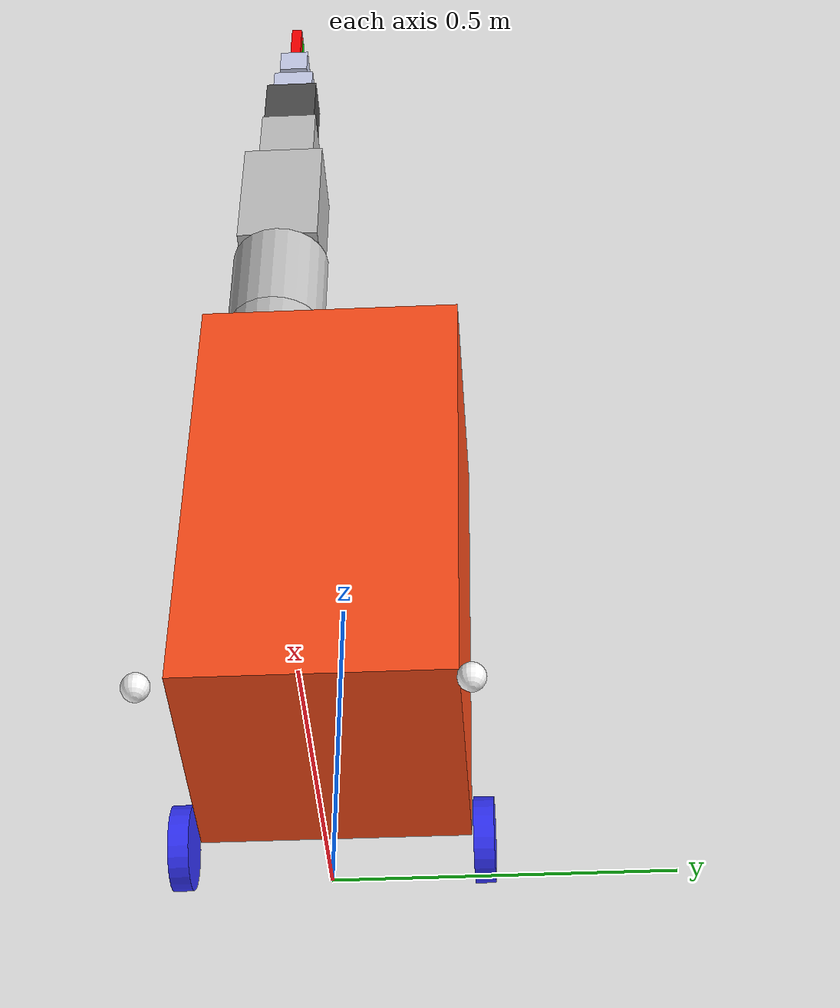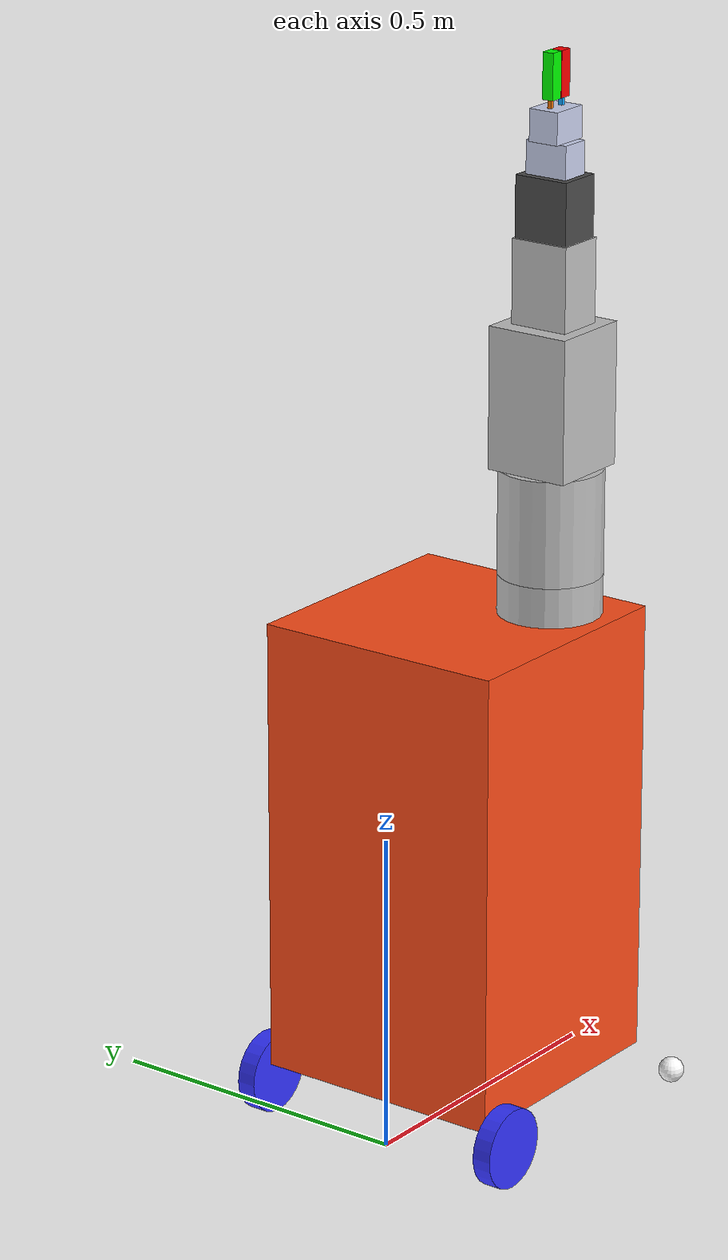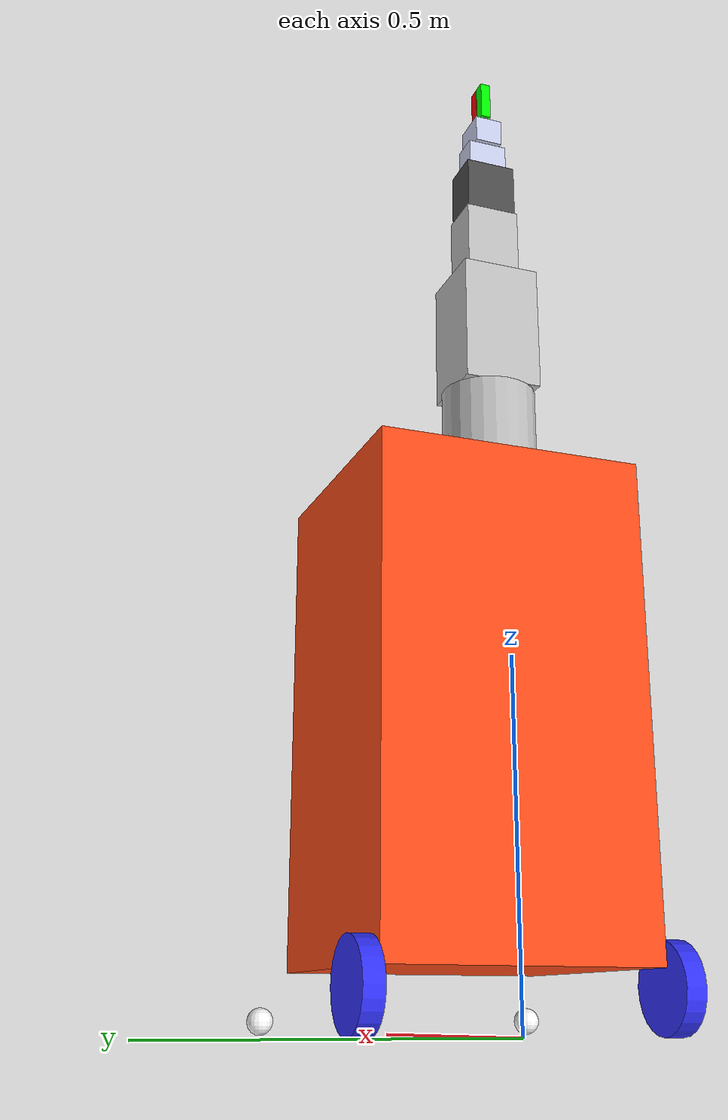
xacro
<?xml version="1.0"?>
<robot xmlns:xacro="http://www.ros.org/wiki/xacro" name="robot">
    <xacro:arg name="initial_positions_file" default="initial_positions.yaml" />

    <!-- Import robot urdf file -->
    <xacro:include filename="$(find robot_description)/urdf/robot_description.xacro" />

    <!-- Import control_xacro -->

</robot>

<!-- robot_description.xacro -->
<robot xmlns:xacro="http://www.ros.org/wiki/xacro"  name="robot_description">

    <xacro:include filename="robot_core.xacro" />

</robot>

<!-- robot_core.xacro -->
<robot xmlns:xacro="http://www.ros.org/wiki/xacro" >

    <xacro:include filename="inertial_macros.xacro"/>

    <xacro:property name="chassis_length" value="0.405"/>
    <xacro:property name="chassis_width" value="0.405"/>
    <xacro:property name="chassis_height" value="0.720"/>
    <xacro:property name="chassis_mass" value="1.0"/>
    <xacro:property name="wheel_radius" value="0.0625"/>
    <xacro:property name="wheel_thickness" value="0.030"/>
    <xacro:property name="wheel_mass" value="0.05"/>
    <xacro:property name="wheel_offset_x" value="0.025"/>
    <xacro:property name="wheel_offset_y" value="0.2225"/>
    <xacro:property name="wheel_offset_z" value="-0.025"/>
    <xacro:property name="caster_wheel_radius" value="0.02"/>
    <xacro:property name="caster_wheel_mass" value="0.01"/>
    <xacro:property name="caster_wheel_offset_x" value="0.475"/>
    <xacro:property name="caster_wheel_offset_y" value="0.2225"/>
    <xacro:property name="caster_wheel_offset_z" value="${wheel_offset_z - wheel_radius + caster_wheel_radius}"/>

    <xacro:property name="link_0_radius" value="0.08"/>
    <xacro:property name="link_0_height" value="0.062"/>

    <xacro:property name="link_1_radius" value="0.08"/>
    <xacro:property name="link_1_height" value="0.1655"/>

    <xacro:property name="link_2_width" value="0.1346"/>
    <xacro:property name="link_2_length" value="0.1346"/>
    <xacro:property name="link_2_height" value="0.2202"/>

    <xacro:property name="link_3_width" value="0.0776"/>
    <xacro:property name="link_3_length" value="0.095"/>
    <xacro:property name="link_3_height" value="0.1299"/>

    <xacro:property name="link_4_width" value="0.0719"/>
    <xacro:property name="link_4_length" value="0.0891"/>
    <xacro:property name="link_4_height" value="0.0949"/>

    <xacro:property name="link_5_width" value="0.048"/>
    <xacro:property name="link_5_length" value="0.0700"/>
    <xacro:property name="link_5_height" value="0.0510"/>

    <xacro:property name="hand_width" value="0.049"/>
    <xacro:property name="hand_length" value="0.0632"/>
    <xacro:property name="hand_height" value="0.0490"/>

    <xacro:property name="gripper_servo_gear_width" value="0.006"/>
    <xacro:property name="gripper_servo_gear_length" value="0.006"/>
    <xacro:property name="gripper_servo_gear_height" value="0.0399"/>

    <xacro:property name="tip_gripper_servo_width" value="0.018"/>
    <xacro:property name="tip_gripper_servo_length" value="0.021"/>
    <xacro:property name="tip_gripper_servo_height" value="0.07"/>

    <xacro:property name="pivot_arm_gripper_servo_width" value="0.006"/>
    <xacro:property name="pivot_arm_gripper_servo_length" value="0.006"/>
    <xacro:property name="pivot_arm_gripper_servo_height" value="0.0399"/>

    <xacro:property name="gripper_idol_gear_width" value="0.006"/>
    <xacro:property name="gripper_idol_gear_length" value="0.006"/>
    <xacro:property name="gripper_idol_gear_height" value="0.0399"/>

    <xacro:property name="tip_gripper_idol_width" value="0.018"/>
    <xacro:property name="tip_gripper_idol_length" value="0.021"/>
    <xacro:property name="tip_gripper_idol_height" value="0.07"/>

    <xacro:property name="pivot_arm_gripper_idol_width" value="0.006"/>
    <xacro:property name="pivot_arm_gripper_idol_length" value="0.006"/>
    <xacro:property name="pivot_arm_gripper_idol_height" value="0.0399"/>

    <xacro:property name="joint_damping" value="21.75"/>
    <xacro:property name="joint_friction" value="10.48"/>
    <xacro:property name="joint_spring_stiffness" value="0"/>
    <xacro:property name="joint_spring_reference" value="0"/>
  <xacro:property name="gripper_joint_damping" value="0.01"/>
  <xacro:property name="gripper_joint_friction" value="0.01"/>
    <xacro:property name="gripper_joint_spring_stiffness" value="0"/>
    <xacro:property name="gripper_joint_spring_reference" value="0"/>

    <xacro:property name="scale_finger_length" value="0.9" />

    <material name="white">
        <color rgba="1 1 1 1" />
    </material>

    <material name="orange">
        <color rgba="1 0.3 0.1 1"/>
    </material>

    <material name="blue">
        <color rgba="0.2 0.2 1 1"/>
    </material>

    <material name="black">
        <color rgba="0 0 0 1"/>
    </material>

    <material name="red">
        <color rgba="1 0 0 1"/>
    </material>

    <!-- BASE LINK -->

    <link name="base_link"></link>
    <!-- BASE_FOOTPRINT LINK -->

    <joint name="base_footprint_joint" type="fixed">
        <parent link="base_link"/>
        <child link="base_footprint"/>
        <origin xyz="0 0 0" rpy="0 0 0"/>
    </joint>

    <link name="base_footprint">
    </link>

    <!-- BASE LINK -->

    <joint name="floor_joint" type="fixed">
        <parent link="base_link"/>
        <child link="floor"/>
        <origin xyz="0 0 ${wheel_radius}"/>
    </joint>

    <link name="floor"></link>
    <!-- BASE_FOOTPRINT LINK -->

    <!-- CHASSIS LINK -->

    <joint name="chassis_joint" type="fixed">
        <parent link="floor"/>
        <child link="chassis"/>
        <origin xyz="${-wheel_offset_x} 0 ${-wheel_offset_z}"/>
    </joint>

    <link name="chassis">
        <visual>
            <origin xyz="${chassis_length/2} 0 ${chassis_height/2}"/>
            <geometry>
                <box size="${chassis_length} ${chassis_width} ${chassis_height}"/>
            </geometry>
            <material name="orange"/>
        </visual>
        <collision>
            <origin xyz="${chassis_length/2} 0 ${chassis_height/2}"/>
            <geometry>
                <box size="${chassis_length} ${chassis_width} ${chassis_height}"/>
            </geometry>
        </collision>
        <xacro:inertial_box mass="10.0" x="${chassis_length}" y="${chassis_width}" z="${chassis_height}">
            <origin xyz="${chassis_length/2} 0 ${chassis_height/2}" rpy="0 0 0"/>
        </xacro:inertial_box>
    </link>

    <!-- LEFT WHEEL LINK -->

    <joint name="left_wheel_joint" type="continuous">
        <parent link="floor"/>
        <child link="left_wheel"/>
        <origin xyz="0 ${wheel_offset_y} 0" rpy="-${pi/2} 0 0" />
        <axis xyz="0 0 1"/>
        <dynamics damping="21.75" friction="10.48" spring_reference="${joint_spring_reference}" spring_stiffness="{joint_spring_stiffness}"/>
    </joint>

    <link name="left_wheel">
        <visual>
            <geometry>
                <cylinder radius="${wheel_radius}" length="${wheel_thickness}"/>
            </geometry>
            <material name="blue"/>
        </visual>
        <collision>
            <geometry>
                <sphere radius="${wheel_radius}"/>
            </geometry>
        </collision>
        <xacro:inertial_cylinder mass="${wheel_mass}" length="${wheel_thickness}" radius="${wheel_radius}">
            <origin xyz="0 0 0" rpy="0 0 0"/>
        </xacro:inertial_cylinder>
    </link>

    <!-- RIGHT WHEEL LINK -->

    <joint name="right_wheel_joint" type="continuous">
        <parent link="floor"/>
        <child link="right_wheel"/>
        <origin xyz="0 ${-wheel_offset_y} 0" rpy="${pi/2} 0 0" />
        <axis xyz="0 0 -1"/>
        <dynamics damping="21.75" friction="10.48" spring_reference="${joint_spring_reference}" spring_stiffness="{joint_spring_stiffness}"/>
    </joint>

    <link name="right_wheel">
        <visual>
            <geometry>
                <cylinder radius="${wheel_radius}" length="${wheel_thickness}"/>
            </geometry>
            <material name="blue"/>
        </visual>
        <collision>
            <geometry>
                <sphere radius="${wheel_radius}"/>
            </geometry>
        </collision>
        <xacro:inertial_cylinder mass="${wheel_mass}" length="${wheel_thickness}" radius="${wheel_radius}">
            <origin xyz="0 0 0" rpy="0 0 0"/>
        </xacro:inertial_cylinder>
    </link>

    <!-- CASTER WHEEL LINK -->

    <joint name="caster_wheel_joint" type="fixed">
        <parent link="chassis"/>
        <child link="caster_wheel"/>
        <origin xyz="${caster_wheel_offset_x} ${caster_wheel_offset_y} ${caster_wheel_offset_z}"/>
    </joint>

    <link name="caster_wheel">
        <visual>
            <geometry>
                <sphere radius="${caster_wheel_radius}"/>
            </geometry>
            <material name="white"/>
        </visual>
        <collision>
            <geometry>
                <sphere radius="${caster_wheel_radius}"/>
            </geometry>
        </collision>
        <xacro:inertial_sphere mass="${caster_wheel_mass}" radius="${caster_wheel_radius}">
            <origin xyz="0 0 0" rpy="0 0 0"/>
        </xacro:inertial_sphere>
    </link>

    <joint name="caster_wheel_joint2" type="fixed">
        <parent link="chassis"/>
        <child link="caster_wheel2"/>
        <origin xyz="${caster_wheel_offset_x} ${-caster_wheel_offset_y} ${caster_wheel_offset_z}"/>
    </joint>

    <link name="caster_wheel2">
        <visual>
            <geometry>
                <sphere radius="${caster_wheel_radius}"/>
            </geometry>
            <material name="white"/>
        </visual>
        <collision>
            <geometry>
                <sphere radius="${caster_wheel_radius}"/>
            </geometry>
        </collision>
        <xacro:inertial_sphere mass="${caster_wheel_mass}" radius="${caster_wheel_radius}">
            <origin xyz="0 0 0" rpy="0 0 0"/>
        </xacro:inertial_sphere>
    </link>

  <joint name="robot_joint0" type="fixed">
    <origin rpy="0 0 0.0" xyz="0.3 -0.1 ${chassis_height}" />
    <parent link="chassis"/>
    <child link="robot_link0"/>
  </joint>

  <link
    name="robot_link0">
    <xacro:inertial_cylinder mass="0.001246584" length="${link_0_height}" radius="${link_0_radius}">
        <origin xyz="0 0 ${link_0_height/2.0}" rpy="0 0 0"/>
    </xacro:inertial_cylinder>
    <visual>
      <origin
        xyz="0 0 ${link_0_height/2.0}"
        rpy="0 0 0" />
      <geometry>
        <cylinder radius="${link_0_radius}" length="${link_0_height}"/>
      </geometry>
      <material
        name="">
        <color
          rgba="0.75294 0.75294 0.75294 1" />
      </material>
    </visual>
    <collision>
      <origin
        xyz="0 0 ${link_0_height/2.0}"
        rpy="0 0 0" />
      <geometry>
        <cylinder radius="${link_0_radius}" length="${link_0_height}"/>
      </geometry>
    </collision>
  </link>

  <joint name="robot_joint1" type="revolute">
      <origin xyz="0 0 ${link_0_height}" rpy="0 0 0"/>
      <parent link="robot_link0"/>
      <child link="robot_link1"/>
      <axis xyz="0 0 1"/>
      <limit lower="${-pi/2.0}" upper="${pi/2.0}" velocity="100" effort="100"/>
      <dynamics damping="0.01" friction="0.01" spring_reference="${joint_spring_reference}" spring_stiffness="{joint_spring_stiffness}"/>
  </joint>

  <link
    name="robot_link1">
    <xacro:inertial_cylinder mass="0.003327575" length="${link_1_height}" radius="${link_1_radius}">
        <origin xyz="0 0 ${link_1_height/2.0}" rpy="0 0 0"/>
    </xacro:inertial_cylinder>
    <visual>
      <origin
        xyz="0 0 ${link_1_height/2.0}"
        rpy="0 0 0" />
      <geometry>
        <cylinder radius="${link_1_radius}" length="${link_1_height}"/>
      </geometry>
      <material
        name="">
        <color
          rgba="0.75294 0.75294 0.75294 1" />
      </material>
    </visual>
    <collision>
      <origin
        xyz="0 0 ${link_1_height/2.0}"
        rpy="0 0 0" />
      <geometry>
        <cylinder radius="${link_1_radius}" length="${link_1_height}"/>
      </geometry>
    </collision>
  </link>

  <link
    name="robot_link2">
    <xacro:inertial_box mass="0.003989399" x="${link_2_width}" y="${link_2_length}" z="${link_2_height}">
        <origin xyz="0 0 ${link_2_height/2.0}" rpy="0 0 0"/>
    </xacro:inertial_box>
    <visual>
      <origin
        xyz="0 0 ${link_2_height/2.0}"
        rpy="0 0 0" />
      <geometry>
        <box size="${link_2_width} ${link_2_length} ${link_2_height}"/>
      </geometry>
      <material
        name="">
        <color
          rgba="0.75294 0.75294 0.75294 1" />
      </material>
    </visual>
    <collision>
      <origin
        xyz="0 0 ${link_2_height/2.0}"
        rpy="0 0 0" />
      <geometry>
        <box size="${link_2_width} ${link_2_length} ${link_2_height}"/>
      </geometry>
    </collision>
  </link>

  <joint
    name="robot_joint2"
    type="revolute">
    <origin
      xyz="0 0 ${link_1_height}"
      rpy="0 0 0" />
    <parent
      link="robot_link1" />
    <child
      link="robot_link2" />
    <axis
      xyz="1 0 0" />
    <limit
      lower="-1.570796327"
      upper="1.570796327"
      effort="5"
      velocity="1" />
    <dynamics damping="0.01" friction="0.01" spring_reference="${joint_spring_reference}" spring_stiffness="{joint_spring_stiffness}"/>
  </joint>

  <link
    name="robot_link3">
    <xacro:inertial_box mass="0.000957623" x="${link_3_width}" y="${link_3_length}" z="${link_3_height}">
        <origin xyz="0 0 ${link_3_height/2.0}" rpy="0 0 0"/>
    </xacro:inertial_box>
    <visual>
      <origin
        xyz="0 0 ${link_3_height/2.0}"
        rpy="0 0 0" />
      <geometry>
        <box size="${link_3_width} ${link_3_length} ${link_3_height}"/>
      </geometry>
      <material
        name="">
        <color
          rgba="0.75294 0.75294 0.75294 1" />
      </material>
    </visual>
    <collision>
      <origin
        xyz="0 0 ${link_3_height/2.0}"
        rpy="0 0 0" />
      <geometry>
        <box size="${link_3_width} ${link_3_length} ${link_3_height}"/>
      </geometry>
    </collision>
  </link>

  <joint
    name="robot_joint3"
    type="revolute">
    <origin
      xyz="0 0 ${link_2_height}"
      rpy="0 0 0" />
    <parent
      link="robot_link2" />
    <child
      link="robot_link3" />
    <axis
      xyz="1 0 0" />
    <limit
      lower="-1.65"
      upper="1.65"
      effort="5"
      velocity="1" />
    <dynamics damping="0.01" friction="0.01" spring_reference="${joint_spring_reference}" spring_stiffness="{joint_spring_stiffness}"/>
  </joint>

  <link
    name="robot_link4">
    <xacro:inertial_box mass="0.000607957" x="${link_4_width}" y="${link_4_length}" z="${link_4_height}">
        <origin xyz="0 0 ${link_4_height/2}" rpy="0 0 0"/>
    </xacro:inertial_box>
    <visual>
      <origin
        xyz="0 0 ${link_4_height/2.0}"
        rpy="0 0 0" />
      <geometry>
        <box size="${link_4_width} ${link_4_length} ${link_4_height}"/>
      </geometry>
      <material
        name="">
        <color
          rgba="0.29412 0.29412 0.29412 1" />
      </material>
    </visual>
    <collision>
      <origin
        xyz="0 0 ${link_4_height/2.0}"
        rpy="0 0 0" />
      <geometry>
        <box size="${link_4_width} ${link_4_length} ${link_4_height}"/>
      </geometry>
    </collision>
  </link>

  <joint
    name="robot_joint4"
    type="revolute">
    <origin
      xyz="0 0 ${link_3_height}"
      rpy="0 0 0" />
    <parent
      link="robot_link3" />
    <child
      link="robot_link4" />
    <axis
      xyz="0 0 1" />
    <limit
      lower="-3.14"
      upper="3.14"
      effort="5"
      velocity="1" />
    <dynamics damping="0.01" friction="0.01" spring_reference="${joint_spring_reference}" spring_stiffness="{joint_spring_stiffness}"/>
  </joint>

  <link
    name="robot_link5">
    <xacro:inertial_box mass="0.00017136" x="${link_5_width}" y="${link_5_length}" z="${link_5_height}">
        <origin xyz="0 0 ${link_5_height/2}" rpy="0 0 0"/>
    </xacro:inertial_box>
    <visual>
      <origin
        xyz="0 0 ${link_5_height/2.0}"
        rpy="0 0 0" />
      <geometry>
        <box size="${link_5_width} ${link_5_length} ${link_5_height}"/>
      </geometry>
      <material
        name="">
        <color
          rgba="0.79216 0.81961 0.93333 1" />
      </material>
    </visual>
    <collision>
      <origin
        xyz="0 0 ${link_5_height/2.0}"
        rpy="0 0 0" />
      <geometry>
        <box size="${link_5_width} ${link_5_length} ${link_5_height}"/>
      </geometry>
    </collision>
  </link>

  <joint
    name="robot_joint5"
    type="revolute">
    <origin
      xyz="0 0 ${link_4_height}"
      rpy="0 0 0" />
    <parent
      link="robot_link4" />
    <child
      link="robot_link5" />
    <axis
      xyz="1 0 0" />
    <limit
      lower="-1.570796327"
      upper="1.570796327"
      effort="5"
      velocity="1" />
    <dynamics damping="0.01" friction="0.01" spring_reference="${joint_spring_reference}" spring_stiffness="{joint_spring_stiffness}"/>
  </joint>

  <link name="robot_link6" />

  <joint
    name="robot_joint6"
    type="revolute">
    <origin
      xyz="0 0 ${link_5_height}"
      rpy="0 0 0" />
    <parent
      link="robot_link5" />
    <child
      link="robot_link6" />
    <axis
      xyz="0 0 1" />
    <limit
      lower="-3"
      upper="3"
      effort="5"
      velocity="1" />
    <dynamics damping="0.01" friction="0.01" spring_reference="${joint_spring_reference}" spring_stiffness="{joint_spring_stiffness}"/>
  </joint>

  <link name="robot_link7" />
  <joint name="robot_joint7" type="fixed">
      <origin rpy="0 0 0" xyz="0 0 0" />
      <parent link="robot_link6" />
      <child link="robot_link7" />
      <axis xyz="0 0 0" />
  </joint>

  <link
    name="robot_hand">
    <xacro:inertial_box mass="0.000151743" x="${hand_width}" y="${hand_length}" z="${hand_height}">
        <origin xyz="0 0 ${hand_height/2}" rpy="0 0 0"/>
    </xacro:inertial_box>
    <visual>
      <origin
        xyz="0 0 ${hand_height/2.0}"
        rpy="0 0 0" />
      <geometry>
        <box size="${hand_width} ${hand_length} ${hand_height}"/>
      </geometry>
      <material
        name="">
        <color
          rgba="0.79216 0.81961 0.93333 1" />
      </material>
    </visual>
    <collision>
      <origin
        xyz="0 0 ${hand_height/2.0}"
        rpy="0 0 0" />
      <geometry>
        <box size="${hand_width} ${hand_length} ${hand_height}"/>
      </geometry>
    </collision>
  </link>

  <joint
    name="robot_hand_joint"
    type="fixed">
    <origin
      xyz="0 0 0"
      rpy="0 0 1.570796327" />
    <parent
      link="robot_link7" />
    <child
      link="robot_hand" />
  </joint>

  <link name="robot_camera" />
  <joint name="robot_camera_joint" type="fixed">
      <origin rpy="0 0 1.570796327" xyz="0.0645 0 0.0685" />
      <parent link="robot_hand" />
      <child link="robot_camera" />
      <axis xyz="0 0 0" />
  </joint>

  <link
    name="Gripper_Servo_Gear">
    <inertial>
      <origin
        xyz="0.0 0.0 ${gripper_servo_gear_height/2}"
        rpy="0 0 0" />
      <mass
        value="0.000476207785199474" />
      <inertia
        ixx="0.001"
        ixy="0"
        ixz="0"
        iyy="0.001"
        iyz="0"
        izz="0.001" />
    </inertial>
    <visual>
      <origin
        xyz="0 0 ${gripper_servo_gear_height/2.0}"
        rpy="0 0 0" />
      <geometry>
        <box size="${gripper_servo_gear_width} ${gripper_servo_gear_length} ${gripper_servo_gear_height}"/>
      </geometry>
      <material
        name="">
        <color
          rgba="0.9098 0.44314 0.031373 1" />
      </material>
    </visual>
    <collision>
      <origin
        xyz="0 0 ${gripper_servo_gear_height/2.0}"
        rpy="0 0 0" />
      <geometry>
        <box size="${gripper_servo_gear_width} ${gripper_servo_gear_length} ${gripper_servo_gear_height}"/>
      </geometry>
    </collision>
  </link>

  <joint
    name="robot_finger_joint1"
    type="revolute">
    <origin
      xyz="0 0.014 0.022"
      rpy="0.0 0.0 0.0" />
    <parent
      link="robot_hand" />
    <child
      link="Gripper_Servo_Gear" />
    <axis
      xyz="1 0 0" />
    <limit effort="5.0" lower="-1.5" upper="1.5" velocity="1.0"/>
    <dynamics damping="${gripper_joint_damping}" friction="${gripper_joint_friction}" spring_reference="${gripper_joint_spring_reference}" spring_stiffness="{gripper_joint_spring_stiffness}"/>
  </joint>

  <link
    name="robot_rightfinger">
    <inertial>
      <origin
        xyz="0.0 0.003 ${tip_gripper_servo_height/2.0}"
        rpy="0 0 0" />
      <mass
        value="0.000476207785199474" />
      <inertia
        ixx="0.001"
        ixy="0"
        ixz="0"
        iyy="0.001"
        iyz="0"
        izz="0.001" />
    </inertial>

    <visual>
      <origin
        xyz="0 -0.003 ${tip_gripper_servo_height/2.0}"
        rpy="0 0 0" />
      <geometry>
        <box size="${tip_gripper_servo_width} ${tip_gripper_servo_length} ${tip_gripper_servo_height}"/>
      </geometry>
      <material
        name="">
        <color
          rgba="0 1 0 1" />
      </material>
    </visual>
    <collision>
      <origin
        xyz="0 -0.003 ${tip_gripper_servo_height/2.0}"
        rpy="0 0 0" />
      <geometry>
        <box size="${tip_gripper_servo_width} ${tip_gripper_servo_length} ${tip_gripper_servo_height}"/>
      </geometry>
    </collision>
  </link>

  <joint
    name="Tip_Gripper_Servo_Joint"
    type="revolute">
    <origin
      xyz="0 0 0.04"
      rpy="0 0 0" />
    <parent
      link="Gripper_Servo_Gear" />
    <child
      link="robot_rightfinger" />
    <axis
      xyz="1 0 0" />
    <limit effort="5.0" lower="-1.5" upper="1.5" velocity="1.0"/>
    <dynamics damping="${gripper_joint_damping}" friction="${gripper_joint_friction}" spring_reference="${gripper_joint_spring_reference}" spring_stiffness="{gripper_joint_spring_stiffness}"/>
  </joint>

  <link
    name="Gripper_Idol_Gear">
    <inertial>
      <origin
        xyz="0.0 0.0 ${gripper_idol_gear_height/2.0}"
        rpy="0 0 0" />
      <mass
        value="0.000476207785199481" />
        <inertia
        ixx="0.001"
        ixy="0"
        ixz="0"
        iyy="0.001"
        iyz="0"
        izz="0.001" />
    </inertial>
    <visual>
      <origin
        xyz="0 0 ${gripper_idol_gear_height/2.0}"
        rpy="0 0 0" />
      <geometry>
        <box size="${gripper_idol_gear_width} ${gripper_idol_gear_length} ${gripper_idol_gear_height}"/>
      </geometry>
      <material
        name="">
        <color
          rgba="0.058824 0.64706 1 1" />
      </material>
    </visual>
    <collision>
      <origin
        xyz="0 0 ${gripper_idol_gear_height/2.0}"
        rpy="0 0 0" />
      <geometry>
        <box size="${gripper_idol_gear_width} ${gripper_idol_gear_length} ${gripper_idol_gear_height}"/>
      </geometry>
    </collision>
  </link>

  <joint
    name="robot_finger_joint2"
    type="revolute">
    <origin
      xyz="0 -0.014 0.022"
      rpy="0.0 0.0 0.0" />
    <parent
      link="robot_hand" />
    <child
      link="Gripper_Idol_Gear" />
    <axis
      xyz="1 0 0" />
    <limit effort="5.0" lower="-1.5" upper="1.5" velocity="1.0"/>
    <dynamics damping="${gripper_joint_damping}" friction="${gripper_joint_friction}" spring_reference="${gripper_joint_spring_reference}" spring_stiffness="{gripper_joint_spring_stiffness}"/>
  </joint>

  <link
    name="robot_leftfinger">
    <inertial>
      <origin
        xyz="0.0 0.003 ${tip_gripper_idol_height/2.0}"
        rpy="0 0 0" />
      <mass
        value="0.000476207785199481" />
        <inertia
        ixx="0.001"
        ixy="0"
        ixz="0"
        iyy="0.001"
        iyz="0"
        izz="0.001" />
    </inertial>
    <visual>
      <origin
        xyz="0 0.003 ${tip_gripper_idol_height/2.0}"
        rpy="0 0 0" />
      <geometry>
        <box size="${tip_gripper_idol_width} ${tip_gripper_idol_length} ${tip_gripper_idol_height}"/>
      </geometry>
      <material
        name="">
        <color
          rgba="1 0 0 1" />
      </material>
    </visual>
    <collision>
      <origin
        xyz="0 0.003 ${tip_gripper_idol_height/2.0}"
        rpy="0 0 0" />
      <geometry>
        <box size="${tip_gripper_idol_width} ${tip_gripper_idol_length} ${tip_gripper_idol_height}"/>
      </geometry>
    </collision>
  </link>

  <joint
    name="Tip_Gripper_Idol_Joint"
    type="revolute">
    <origin
      xyz="0 0 0.04"
      rpy="0 0 0" />
    <parent
      link="Gripper_Idol_Gear" />
    <child
      link="robot_leftfinger" />
    <axis
      xyz="1 0 0" />
    <limit effort="5.0" lower="-1.5" upper="1.5" velocity="1.0"/>
    <dynamics damping="${gripper_joint_damping}" friction="${gripper_joint_friction}" spring_reference="${gripper_joint_spring_reference}" spring_stiffness="{gripper_joint_spring_stiffness}"/>
  </joint>

</robot>
